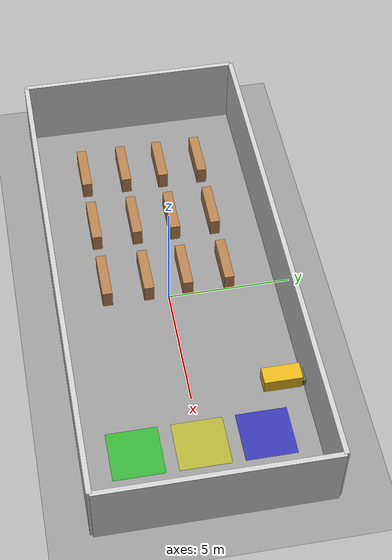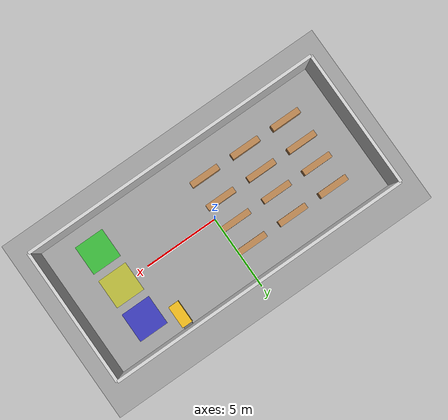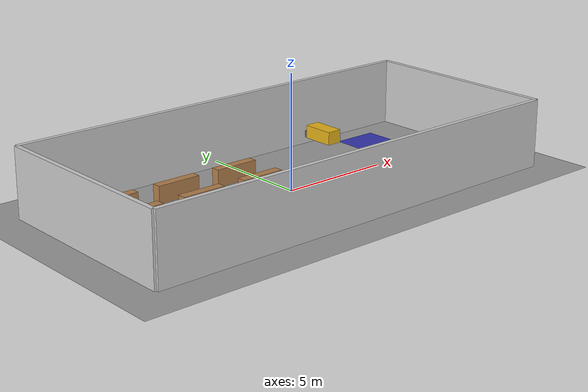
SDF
<?xml version="1.0"?>
<sdf version="1.7" xmlns:xi="http://www.w3.org/2001/XInclude">
  <world name="warehouse">

    <!-- ========== Physics ========== -->
    <physics type="ode">
      <max_step_size>0.001</max_step_size>
      <real_time_factor>1.0</real_time_factor>
      <real_time_update_rate>1000</real_time_update_rate>
      <!-- gravity handled by default -->
    </physics>

    <!-- ========== Lighting ========== -->
    <scene>
      <ambient>0.4 0.4 0.4 1.0</ambient>
      <background>0.3 0.3 0.35 1.0</background>
      <shadows>false</shadows>
    </scene>

    <light name="sun" type="directional">
      <pose>0 0 10 0 0 0</pose>
      <diffuse>0.7 0.7 0.7 1.0</diffuse>
      <specular>0.2 0.2 0.2 1.0</specular>
      <direction>0.3 -0.3 -1.0</direction>
      <cast_shadows>false</cast_shadows>
    </light>

    <!-- ========== Ground Plane ========== -->
    <model name="ground_plane">
      <static>true</static>
      <link name="link">
        <collision name="collision">
          <geometry><plane><normal>0 0 1</normal><size>30 30</size></plane></geometry>
        </collision>
        <visual name="visual">
          <geometry><plane><normal>0 0 1</normal><size>30 30</size></plane></geometry>
          <material>
            <ambient>0.5 0.5 0.5 1.0</ambient>
            <diffuse>0.6 0.6 0.6 1.0</diffuse>
            <specular>0.1 0.1 0.1 1.0</specular>
          </material>
        </visual>
      </link>
    </model>

    <!-- ========== Walls ========== -->
    <model name="wall_north">
      <static>true</static>
      <pose>0 4.5 1.5 0 0 0</pose>
      <link name="link">
        <visual name="visual">
          <geometry><box><size>20 0.2 3.0</size></box></geometry>
          <material>
            <ambient>0.7 0.7 0.7 1.0</ambient>
            <diffuse>0.8 0.8 0.8 1.0</diffuse>
          </material>
        </visual>
        <collision name="collision">
          <geometry><box><size>20 0.2 3.0</size></box></geometry>
        </collision>
      </link>
    </model>

    <model name="wall_south">
      <static>true</static>
      <pose>0 -4.5 1.5 0 0 0</pose>
      <link name="link">
        <visual name="visual">
          <geometry><box><size>20 0.2 3.0</size></box></geometry>
          <material>
            <ambient>0.7 0.7 0.7 1.0</ambient>
            <diffuse>0.8 0.8 0.8 1.0</diffuse>
          </material>
        </visual>
        <collision name="collision">
          <geometry><box><size>20 0.2 3.0</size></box></geometry>
        </collision>
      </link>
    </model>

    <model name="wall_east">
      <static>true</static>
      <pose>10 0 1.5 0 0 1.5708</pose>
      <link name="link">
        <visual name="visual">
          <geometry><box><size>9.0 0.2 3.0</size></box></geometry>
          <material>
            <ambient>0.7 0.7 0.7 1.0</ambient>
            <diffuse>0.8 0.8 0.8 1.0</diffuse>
          </material>
        </visual>
        <collision name="collision">
          <geometry><box><size>9.0 0.2 3.0</size></box></geometry>
        </collision>
      </link>
    </model>

    <model name="wall_west">
      <static>true</static>
      <pose>-10 0 1.5 0 0 1.5708</pose>
      <link name="link">
        <visual name="visual">
          <geometry><box><size>9.0 0.2 3.0</size></box></geometry>
          <material>
            <ambient>0.7 0.7 0.7 1.0</ambient>
            <diffuse>0.8 0.8 0.8 1.0</diffuse>
          </material>
        </visual>
        <collision name="collision">
          <geometry><box><size>9.0 0.2 3.0</size></box></geometry>
        </collision>
      </link>
    </model>

    <!-- ========== Shelves: 4 rows ========== -->
    <!-- Shelf Row 1 -->
    <model name="shelf_row1_col1">
      <static>true</static>
      <pose>-7 -2.5 0 0 0 0</pose>
      <link name="link">
        <visual name="visual">
          <geometry><box><size>2.0 0.4 1.5</size></box></geometry>
          <material>
            <ambient>0.6 0.4 0.2 1.0</ambient>
            <diffuse>0.7 0.5 0.3 1.0</diffuse>
          </material>
        </visual>
        <collision name="collision">
          <geometry><box><size>2.0 0.4 1.5</size></box></geometry>
        </collision>
      </link>
    </model>

    <model name="shelf_row1_col2">
      <static>true</static>
      <pose>-4 -2.5 0 0 0 0</pose>
      <link name="link">
        <visual name="visual">
          <geometry><box><size>2.0 0.4 1.5</size></box></geometry>
          <material>
            <ambient>0.6 0.4 0.2 1.0</ambient>
            <diffuse>0.7 0.5 0.3 1.0</diffuse>
          </material>
        </visual>
        <collision name="collision">
          <geometry><box><size>2.0 0.4 1.5</size></box></geometry>
        </collision>
      </link>
    </model>

    <model name="shelf_row1_col3">
      <static>true</static>
      <pose>-1 -2.5 0 0 0 0</pose>
      <link name="link">
        <visual name="visual">
          <geometry><box><size>2.0 0.4 1.5</size></box></geometry>
          <material>
            <ambient>0.6 0.4 0.2 1.0</ambient>
            <diffuse>0.7 0.5 0.3 1.0</diffuse>
          </material>
        </visual>
        <collision name="collision">
          <geometry><box><size>2.0 0.4 1.5</size></box></geometry>
        </collision>
      </link>
    </model>

    <!-- Shelf Row 2 -->
    <model name="shelf_row2_col1">
      <static>true</static>
      <pose>-7 -0.8 0 0 0 0</pose>
      <link name="link">
        <visual name="visual">
          <geometry><box><size>2.0 0.4 1.5</size></box></geometry>
          <material>
            <ambient>0.6 0.4 0.2 1.0</ambient>
            <diffuse>0.7 0.5 0.3 1.0</diffuse>
          </material>
        </visual>
        <collision name="collision">
          <geometry><box><size>2.0 0.4 1.5</size></box></geometry>
        </collision>
      </link>
    </model>

    <model name="shelf_row2_col2">
      <static>true</static>
      <pose>-4 -0.8 0 0 0 0</pose>
      <link name="link">
        <visual name="visual">
          <geometry><box><size>2.0 0.4 1.5</size></box></geometry>
          <material>
            <ambient>0.6 0.4 0.2 1.0</ambient>
            <diffuse>0.7 0.5 0.3 1.0</diffuse>
          </material>
        </visual>
        <collision name="collision">
          <geometry><box><size>2.0 0.4 1.5</size></box></geometry>
        </collision>
      </link>
    </model>

    <model name="shelf_row2_col3">
      <static>true</static>
      <pose>-1 -0.8 0 0 0 0</pose>
      <link name="link">
        <visual name="visual">
          <geometry><box><size>2.0 0.4 1.5</size></box></geometry>
          <material>
            <ambient>0.6 0.4 0.2 1.0</ambient>
            <diffuse>0.7 0.5 0.3 1.0</diffuse>
          </material>
        </visual>
        <collision name="collision">
          <geometry><box><size>2.0 0.4 1.5</size></box></geometry>
        </collision>
      </link>
    </model>

    <!-- Shelf Row 3 -->
    <model name="shelf_row3_col1">
      <static>true</static>
      <pose>-7 0.8 0 0 0 0</pose>
      <link name="link">
        <visual name="visual">
          <geometry><box><size>2.0 0.4 1.5</size></box></geometry>
          <material>
            <ambient>0.6 0.4 0.2 1.0</ambient>
            <diffuse>0.7 0.5 0.3 1.0</diffuse>
          </material>
        </visual>
        <collision name="collision">
          <geometry><box><size>2.0 0.4 1.5</size></box></geometry>
        </collision>
      </link>
    </model>

    <model name="shelf_row3_col2">
      <static>true</static>
      <pose>-4 0.8 0 0 0 0</pose>
      <link name="link">
        <visual name="visual">
          <geometry><box><size>2.0 0.4 1.5</size></box></geometry>
          <material>
            <ambient>0.6 0.4 0.2 1.0</ambient>
            <diffuse>0.7 0.5 0.3 1.0</diffuse>
          </material>
        </visual>
        <collision name="collision">
          <geometry><box><size>2.0 0.4 1.5</size></box></geometry>
        </collision>
      </link>
    </model>

    <model name="shelf_row3_col3">
      <static>true</static>
      <pose>-1 0.8 0 0 0 0</pose>
      <link name="link">
        <visual name="visual">
          <geometry><box><size>2.0 0.4 1.5</size></box></geometry>
          <material>
            <ambient>0.6 0.4 0.2 1.0</ambient>
            <diffuse>0.7 0.5 0.3 1.0</diffuse>
          </material>
        </visual>
        <collision name="collision">
          <geometry><box><size>2.0 0.4 1.5</size></box></geometry>
        </collision>
      </link>
    </model>

    <!-- Shelf Row 4 -->
    <model name="shelf_row4_col1">
      <static>true</static>
      <pose>-7 2.5 0 0 0 0</pose>
      <link name="link">
        <visual name="visual">
          <geometry><box><size>2.0 0.4 1.5</size></box></geometry>
          <material>
            <ambient>0.6 0.4 0.2 1.0</ambient>
            <diffuse>0.7 0.5 0.3 1.0</diffuse>
          </material>
        </visual>
        <collision name="collision">
          <geometry><box><size>2.0 0.4 1.5</size></box></geometry>
        </collision>
      </link>
    </model>

    <model name="shelf_row4_col2">
      <static>true</static>
      <pose>-4 2.5 0 0 0 0</pose>
      <link name="link">
        <visual name="visual">
          <geometry><box><size>2.0 0.4 1.5</size></box></geometry>
          <material>
            <ambient>0.6 0.4 0.2 1.0</ambient>
            <diffuse>0.7 0.5 0.3 1.0</diffuse>
          </material>
        </visual>
        <collision name="collision">
          <geometry><box><size>2.0 0.4 1.5</size></box></geometry>
        </collision>
      </link>
    </model>

    <model name="shelf_row4_col3">
      <static>true</static>
      <pose>-1 2.5 0 0 0 0</pose>
      <link name="link">
        <visual name="visual">
          <geometry><box><size>2.0 0.4 1.5</size></box></geometry>
          <material>
            <ambient>0.6 0.4 0.2 1.0</ambient>
            <diffuse>0.7 0.5 0.3 1.0</diffuse>
          </material>
        </visual>
        <collision name="collision">
          <geometry><box><size>2.0 0.4 1.5</size></box></geometry>
        </collision>
      </link>
    </model>

    <!-- ========== Loading/Unloading Zone Markers ========== -->
    <model name="loading_zone_a">
      <static>true</static>
      <pose>7 -2.5 0.01 0 0 0</pose>
      <link name="link">
        <visual name="visual">
          <geometry><box><size>2.0 2.0 0.02</size></box></geometry>
          <material>
            <ambient>0.0 0.8 0.0 0.6</ambient>
            <diffuse>0.0 0.8 0.0 0.6</diffuse>
          </material>
        </visual>
      </link>
    </model>

    <model name="loading_zone_b">
      <static>true</static>
      <pose>7 0 0.01 0 0 0</pose>
      <link name="link">
        <visual name="visual">
          <geometry><box><size>2.0 2.0 0.02</size></box></geometry>
          <material>
            <ambient>0.8 0.8 0.0 0.6</ambient>
            <diffuse>0.8 0.8 0.0 0.6</diffuse>
          </material>
        </visual>
      </link>
    </model>

    <model name="loading_zone_c">
      <static>true</static>
      <pose>7 2.5 0.01 0 0 0</pose>
      <link name="link">
        <visual name="visual">
          <geometry><box><size>2.0 2.0 0.02</size></box></geometry>
          <material>
            <ambient>0.0 0.0 0.8 0.6</ambient>
            <diffuse>0.0 0.0 0.8 0.6</diffuse>
          </material>
        </visual>
      </link>
    </model>

    <!-- Dynamic obstacles controlled via forklift_controller.py -->
    <model name="forklift">
      <static>false</static>
      <pose>5 3.5 0.3 0 0 1.5708</pose>
      <link name="chassis">
        <pose>0 0 0.3 0 0 0</pose>
        <visual name="visual">
          <geometry><box><size>1.5 0.7 0.6</size></box></geometry>
          <material>
            <ambient>0.9 0.7 0.1 1.0</ambient>
            <diffuse>0.9 0.7 0.1 1.0</diffuse>
          </material>
        </visual>
        <collision name="collision">
          <geometry><box><size>1.5 0.7 0.6</size></box></geometry>
        </collision>
      </link>
      <link name="fork">
        <pose>0.9 0 0.15 0 0 0</pose>
        <visual name="visual">
          <geometry><box><size>0.3 0.6 0.3</size></box></geometry>
          <material>
            <ambient>0.3 0.3 0.3 1.0</ambient>
            <diffuse>0.4 0.4 0.4 1.0</diffuse>
          </material>
        </visual>
        <collision name="collision">
          <geometry><box><size>0.3 0.6 0.3</size></box></geometry>
        </collision>
      </link>
      <joint name="fork_joint" type="fixed">
        <parent>chassis</parent>
        <child>fork</child>
      </joint>
    </model>

  </world>
</sdf>
